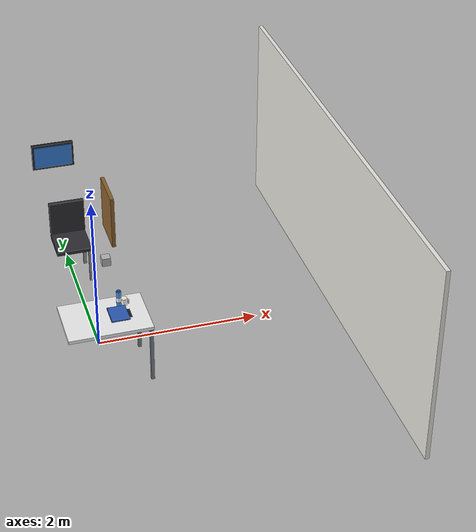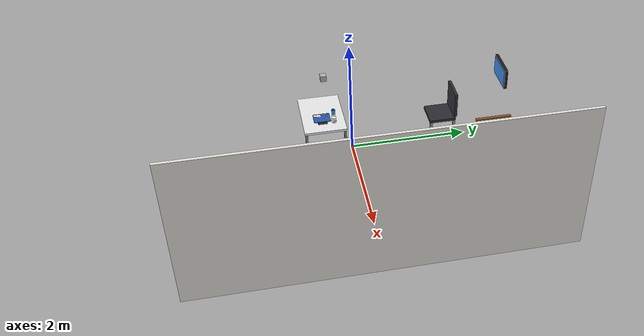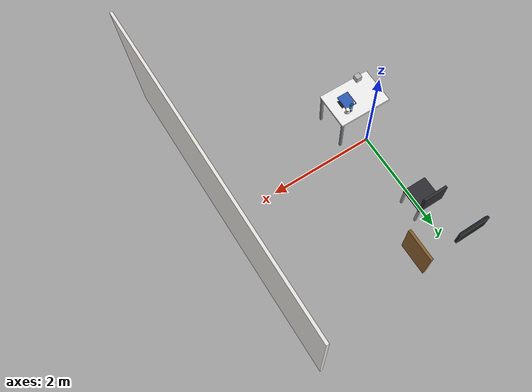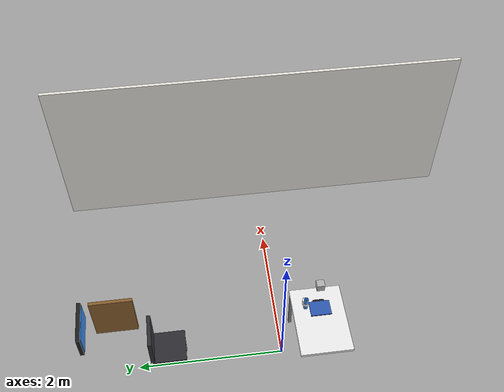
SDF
<sdf version="1.10">
 <world name="bps_room">
  <model name="wall_east">
   <static>true</static>
   <pose>3 0 1.25 0 0 0</pose>
   <link name="link">
    <collision name="collision">
     <geometry><box><size>0.050000000000000003 6 2.5</size></box></geometry>
    </collision>
    <visual name="visual">
     <geometry><box><size>0.050000000000000003 6 2.5</size></box></geometry>
     <material>
      <ambient>0.930000007 0.920000017 0.889999986 1</ambient>
      <diffuse>0.930000007 0.920000017 0.889999986 1</diffuse>
     </material>
    </visual>
    <inertial>
     <mass>1</mass>
     <inertia><ixx>1</ixx><ixy>0</ixy><ixz>0</ixz><iyy>1</iyy><iyz>0</iyz><izz>1</izz></inertia>
    </inertial>
   </link>
  </model>
  <model name="desk_leg_right">
   <static>true</static>
   <pose>0.65000000000000002 2.2999999999999998 0.375 0 0 0</pose>
   <link name="link">
    <collision name="collision">
     <geometry><box><size>0.050000000000000003 0.59999999999999998 0.75</size></box></geometry>
    </collision>
    <visual name="visual">
     <geometry><box><size>0.050000000000000003 0.59999999999999998 0.75</size></box></geometry>
     <material>
      <ambient>0.550000012 0.379999995 0.180000007 1</ambient>
      <diffuse>0.550000012 0.379999995 0.180000007 1</diffuse>
     </material>
    </visual>
    <inertial>
     <mass>1</mass>
     <inertia><ixx>1</ixx><ixy>0</ixy><ixz>0</ixz><iyy>1</iyy><iyz>0</iyz><izz>1</izz></inertia>
    </inertial>
   </link>
  </model>
  <model name="monitor_screen">
   <static>true</static>
   <pose>0 2.6000000000000001 1.2 0 0 0</pose>
   <link name="link">
    <collision name="collision">
     <geometry><box><size>0.55000000000000004 0.050000000000000003 0.34999999999999998</size></box></geometry>
    </collision>
    <visual name="visual">
     <geometry><box><size>0.55000000000000004 0.050000000000000003 0.34999999999999998</size></box></geometry>
     <material>
      <ambient>0.119999997 0.119999997 0.119999997 1</ambient>
      <diffuse>0.119999997 0.119999997 0.119999997 1</diffuse>
     </material>
    </visual>
    <inertial>
     <mass>1</mass>
     <inertia><ixx>1</ixx><ixy>0</ixy><ixz>0</ixz><iyy>1</iyy><iyz>0</iyz><izz>1</izz></inertia>
    </inertial>
   </link>
  </model>
  <model name="monitor_face">
   <static>true</static>
   <pose>0 2.5699999999999998 1.2 0 0 0</pose>
   <link name="link">
    <visual name="visual">
     <geometry><box><size>0.5 0.01 0.29999999999999999</size></box></geometry>
     <material>
      <ambient>0.219999999 0.519999981 0.879999995 1</ambient>
      <diffuse>0.219999999 0.519999981 0.879999995 1</diffuse>
      <emissive>0.100000001 0.25 0.449999988 1</emissive>
     </material>
    </visual>
    <inertial>
     <mass>1</mass>
     <inertia><ixx>1</ixx><ixy>0</ixy><ixz>0</ixz><iyy>1</iyy><iyz>0</iyz><izz>1</izz></inertia>
    </inertial>
   </link>
  </model>
  <model name="chair_seat">
   <static>true</static>
   <pose>0 1.55 0.47999999999999998 0 0 0</pose>
   <link name="link">
    <collision name="collision">
     <geometry><box><size>0.45000000000000001 0.45000000000000001 0.050000000000000003</size></box></geometry>
    </collision>
    <visual name="visual">
     <geometry><box><size>0.45000000000000001 0.45000000000000001 0.050000000000000003</size></box></geometry>
     <material>
      <ambient>0.180000007 0.180000007 0.200000003 1</ambient>
      <diffuse>0.180000007 0.180000007 0.200000003 1</diffuse>
     </material>
    </visual>
    <inertial>
     <mass>1</mass>
     <inertia><ixx>1</ixx><ixy>0</ixy><ixz>0</ixz><iyy>1</iyy><iyz>0</iyz><izz>1</izz></inertia>
    </inertial>
   </link>
  </model>
  <model name="chair_back">
   <static>true</static>
   <pose>0 1.77 0.75 0 0 0</pose>
   <link name="link">
    <collision name="collision">
     <geometry><box><size>0.45000000000000001 0.050000000000000003 0.45000000000000001</size></box></geometry>
    </collision>
    <visual name="visual">
     <geometry><box><size>0.45000000000000001 0.050000000000000003 0.45000000000000001</size></box></geometry>
     <material>
      <ambient>0.180000007 0.180000007 0.200000003 1</ambient>
      <diffuse>0.180000007 0.180000007 0.200000003 1</diffuse>
     </material>
    </visual>
    <inertial>
     <mass>1</mass>
     <inertia><ixx>1</ixx><ixy>0</ixy><ixz>0</ixz><iyy>1</iyy><iyz>0</iyz><izz>1</izz></inertia>
    </inertial>
   </link>
  </model>
  <model name="chair_leg_fr">
   <static>true</static>
   <pose>0.20000000000000001 1.3500000000000001 0.23999999999999999 0 0 0</pose>
   <link name="link">
    <collision name="collision">
     <geometry><box><size>0.040000000000000001 0.040000000000000001 0.47999999999999998</size></box></geometry>
    </collision>
    <visual name="visual">
     <geometry><box><size>0.040000000000000001 0.040000000000000001 0.47999999999999998</size></box></geometry>
     <material>
      <ambient>0.600000024 0.600000024 0.620000005 1</ambient>
      <diffuse>0.600000024 0.600000024 0.620000005 1</diffuse>
     </material>
    </visual>
    <inertial>
     <mass>1</mass>
     <inertia><ixx>1</ixx><ixy>0</ixy><ixz>0</ixz><iyy>1</iyy><iyz>0</iyz><izz>1</izz></inertia>
    </inertial>
   </link>
  </model>
  <model name="chair_leg_br">
   <static>true</static>
   <pose>0.20000000000000001 1.75 0.23999999999999999 0 0 0</pose>
   <link name="link">
    <collision name="collision">
     <geometry><box><size>0.040000000000000001 0.040000000000000001 0.47999999999999998</size></box></geometry>
    </collision>
    <visual name="visual">
     <geometry><box><size>0.040000000000000001 0.040000000000000001 0.47999999999999998</size></box></geometry>
     <material>
      <ambient>0.600000024 0.600000024 0.620000005 1</ambient>
      <diffuse>0.600000024 0.600000024 0.620000005 1</diffuse>
     </material>
    </visual>
    <inertial>
     <mass>1</mass>
     <inertia><ixx>1</ixx><ixy>0</ixy><ixz>0</ixz><iyy>1</iyy><iyz>0</iyz><izz>1</izz></inertia>
    </inertial>
   </link>
  </model>
  <model name="experiment_table">
   <static>true</static>
   <pose>0 -0.5 0.75 0 0 0</pose>
   <link name="link">
    <collision name="collision">
     <geometry><box><size>1 0.69999999999999996 0.040000000000000001</size></box></geometry>
    </collision>
    <visual name="visual">
     <geometry><box><size>1 0.69999999999999996 0.040000000000000001</size></box></geometry>
     <material>
      <ambient>0.959999979 0.959999979 0.959999979 1</ambient>
      <diffuse>0.959999979 0.959999979 0.959999979 1</diffuse>
     </material>
    </visual>
    <inertial>
     <mass>1</mass>
     <inertia><ixx>1</ixx><ixy>0</ixy><ixz>0</ixz><iyy>1</iyy><iyz>0</iyz><izz>1</izz></inertia>
    </inertial>
   </link>
  </model>
  <model name="table_leg_fr">
   <static>true</static>
   <pose>0.46999999999999997 -0.81999999999999995 0.375 0 0 0</pose>
   <link name="link">
    <collision name="collision">
     <geometry><box><size>0.040000000000000001 0.040000000000000001 0.75</size></box></geometry>
    </collision>
    <visual name="visual">
     <geometry><box><size>0.040000000000000001 0.040000000000000001 0.75</size></box></geometry>
     <material>
      <ambient>0.5 0.519999981 0.540000021 1</ambient>
      <diffuse>0.5 0.519999981 0.540000021 1</diffuse>
     </material>
    </visual>
    <inertial>
     <mass>1</mass>
     <inertia><ixx>1</ixx><ixy>0</ixy><ixz>0</ixz><iyy>1</iyy><iyz>0</iyz><izz>1</izz></inertia>
    </inertial>
   </link>
  </model>
  <model name="table_leg_br">
   <static>true</static>
   <pose>0.46999999999999997 -0.17999999999999999 0.375 0 0 0</pose>
   <link name="link">
    <collision name="collision">
     <geometry><box><size>0.040000000000000001 0.040000000000000001 0.75</size></box></geometry>
    </collision>
    <visual name="visual">
     <geometry><box><size>0.040000000000000001 0.040000000000000001 0.75</size></box></geometry>
     <material>
      <ambient>0.5 0.519999981 0.540000021 1</ambient>
      <diffuse>0.5 0.519999981 0.540000021 1</diffuse>
     </material>
    </visual>
    <inertial>
     <mass>1</mass>
     <inertia><ixx>1</ixx><ixy>0</ixy><ixz>0</ixz><iyy>1</iyy><iyz>0</iyz><izz>1</izz></inertia>
    </inertial>
   </link>
  </model>
  <model name="depth_camera">
   <static>true</static>
   <pose>4.163336342344337e-17 -0.5 1.5700000000000001 3.1415926535897931 1.5707926536057681 3.1415926535897931</pose>
   <link name="link">
    <pose>0.050000000000000003 0.050000000000000003 0.050000000000000003 0 0 0</pose>
    <inertial>
     <mass>0.10000000000000001</mass>
     <inertia>
      <ixx>0.00016666700000000001</ixx>
      <iyy>0.00016666700000000001</iyy>
      <izz>0.00016666700000000001</izz>
      <ixy>0</ixy>
      <ixz>0</ixz>
      <iyz>0</iyz>
     </inertia>
    </inertial>
    <collision name="collision">
     <geometry><box><size>0.10000000000000001 0.10000000000000001 0.10000000000000001</size></box></geometry>
    </collision>
    <visual name="visual">
     <geometry><box><size>0.10000000000000001 0.10000000000000001 0.10000000000000001</size></box></geometry>
    </visual>
    <sensor name="depth_camera1" type="depth_camera">
     <topic>depth_camera</topic>
     <update_rate>10</update_rate>
     <enable_metrics>false</enable_metrics>
     <camera name="__default__">
      <horizontal_fov>1.2</horizontal_fov>
      <image>
       <width>640</width>
       <height>480</height>
       <format>R_FLOAT32</format>
       <anti_aliasing>4</anti_aliasing>
      </image>
      <camera_info_topic>__default__</camera_info_topic>
      <triggered>false</triggered>
      <clip><near>0.10000000000000001</near><far>2</far></clip>
      <save enabled="false"><path>__default__</path></save>
      <visibility_mask>4294967295</visibility_mask>
      <noise><type>none</type><mean>0</mean><stddev>0</stddev></noise>
      <distortion><k1>0</k1><k2>0</k2><k3>0</k3><p1>0</p1><p2>0</p2><center>0.5 0.5</center></distortion>
      <lens>
       <type>gnomonical</type>
       <scale_to_hfov>true</scale_to_hfov>
       <cutoff_angle>1.5707963267948966</cutoff_angle>
       <env_texture_size>256</env_texture_size>
      </lens>
     </camera>
    </sensor>
    <sensor name="rgb_camera" type="camera">
     <topic>rgb_camera</topic>
     <update_rate>10</update_rate>
     <enable_metrics>false</enable_metrics>
     <camera name="__default__">
      <horizontal_fov>1.2</horizontal_fov>
      <image><width>640</width><height>480</height><format>RGB_INT8</format><anti_aliasing>4</anti_aliasing></image>
      <camera_info_topic>__default__</camera_info_topic>
      <triggered>false</triggered>
      <clip><near>0.10000000000000001</near><far>2</far></clip>
      <save enabled="false"><path>__default__</path></save>
      <visibility_mask>4294967295</visibility_mask>
      <noise><type>none</type><mean>0</mean><stddev>0</stddev></noise>
      <distortion><k1>0</k1><k2>0</k2><k3>0</k3><p1>0</p1><p2>0</p2><center>0.5 0.5</center></distortion>
      <lens>
       <type>gnomonical</type>
       <scale_to_hfov>true</scale_to_hfov>
       <cutoff_angle>1.5707963267948966</cutoff_angle>
       <env_texture_size>256</env_texture_size>
      </lens>
     </camera>
    </sensor>
    <sensor name="semantic_camera" type="segmentation_camera">
     <topic>semantic_camera</topic>
     <update_rate>10</update_rate>
     <enable_metrics>false</enable_metrics>
     <camera name="__default__">
      <horizontal_fov>1.2</horizontal_fov>
      <image><width>640</width><height>480</height><format>RGB_INT8</format><anti_aliasing>4</anti_aliasing></image>
      <camera_info_topic>__default__</camera_info_topic>
      <triggered>false</triggered>
      <clip><near>0.10000000000000001</near><far>2</far></clip>
      <save enabled="false"><path>__default__</path></save>
      <visibility_mask>4294967295</visibility_mask>
      <noise><type>none</type><mean>0</mean><stddev>0</stddev></noise>
      <distortion><k1>0</k1><k2>0</k2><k3>0</k3><p1>0</p1><p2>0</p2><center>0.5 0.5</center></distortion>
      <lens>
       <type>gnomonical</type>
       <scale_to_hfov>true</scale_to_hfov>
       <cutoff_angle>1.5707963267948966</cutoff_angle>
       <env_texture_size>256</env_texture_size>
      </lens>
     </camera>
    </sensor>
   </link>
  </model>
  <model name="coffee_cup">
   <static>true</static>
   <pose>0.26500000000000001 -0.33000000000000002 0.81599999999999995 0 0 0</pose>
   <link name="link">
    <collision name="collision">
     <geometry>
      <cylinder><radius>0.037999999999999999</radius><length>0.091999999999999998</length></cylinder>
     </geometry>
    </collision>
    <visual name="cup_body">
     <geometry>
      <cylinder><radius>0.037999999999999999</radius><length>0.091999999999999998</length></cylinder>
     </geometry>
     <material>
      <ambient>0.959999979 0.949999988 0.920000017 1</ambient>
      <diffuse>0.959999979 0.949999988 0.920000017 1</diffuse>
      <specular>0.300000012 0.300000012 0.280000001 1</specular>
     </material>
     <plugin name="gz::sim::systems::Label" filename="gz-sim-label-system"><label>2</label></plugin>
    </visual>
    <visual name="rim">
     <pose>0 0 0.043999999999999997 0 0 0</pose>
     <geometry>
      <cylinder><radius>0.037999999999999999</radius><length>0.0040000000000000001</length></cylinder>
     </geometry>
     <material>
      <ambient>0.800000012 0.779999971 0.74000001 1</ambient>
      <diffuse>0.800000012 0.779999971 0.74000001 1</diffuse>
     </material>
     <plugin name="gz::sim::systems::Label" filename="gz-sim-label-system"><label>2</label></plugin>
    </visual>
    <visual name="handle">
     <pose>0.052999999999999999 0 -0.0080000000000000002 0 0 0</pose>
     <geometry><box><size>0.014 0.035999999999999997 0.043999999999999997</size></box></geometry>
     <material>
      <ambient>0.959999979 0.949999988 0.920000017 1</ambient>
      <diffuse>0.959999979 0.949999988 0.920000017 1</diffuse>
     </material>
     <plugin name="gz::sim::systems::Label" filename="gz-sim-label-system"><label>2</label></plugin>
    </visual>
    <visual name="coffee_fill">
     <pose>0 0 0.042000000000000003 0 0 0</pose>
     <geometry>
      <cylinder><radius>0.033000000000000002</radius><length>0.0030000000000000001</length></cylinder>
     </geometry>
     <material>
      <ambient>0.280000001 0.159999996 0.0599999987 1</ambient>
      <diffuse>0.280000001 0.159999996 0.0599999987 1</diffuse>
     </material>
     <plugin name="gz::sim::systems::Label" filename="gz-sim-label-system"><label>2</label></plugin>
    </visual>
    <inertial>
     <mass>1</mass>
     <inertia><ixx>1</ixx><ixy>0</ixy><ixz>0</ixz><iyy>1</iyy><iyz>0</iyz><izz>1</izz></inertia>
    </inertial>
   </link>
  </model>
  <model name="smartphone">
   <static>true</static>
   <pose>0.26551446318626404 -0.51999998092651367 0.77399998903274536 0 0 0</pose>
   <link name="link">
    <collision name="collision">
     <geometry><box><size>0.074999999999999997 0.155 0.0080000000000000002</size></box></geometry>
    </collision>
    <visual name="body">
     <geometry><box><size>0.074999999999999997 0.155 0.0080000000000000002</size></box></geometry>
     <material>
      <ambient>0.119999997 0.119999997 0.140000001 1</ambient>
      <diffuse>0.119999997 0.119999997 0.140000001 1</diffuse>
      <specular>0.349999994 0.349999994 0.379999995 1</specular>
     </material>
     <plugin name="gz::sim::systems::Label" filename="gz-sim-label-system"><label>3</label></plugin>
    </visual>
    <visual name="screen">
     <pose>0 0 0.0025000000000000001 0 0 0</pose>
     <geometry><box><size>0.066000000000000003 0.14000000000000001 0.002</size></box></geometry>
     <material>
      <ambient>0.0599999987 0.0799999982 0.159999996 1</ambient>
      <diffuse>0.0599999987 0.0799999982 0.159999996 1</diffuse>
      <emissive>0.00999999978 0.0199999996 0.0599999987 1</emissive>
     </material>
     <plugin name="gz::sim::systems::Label" filename="gz-sim-label-system"><label>3</label></plugin>
    </visual>
    <visual name="camera_notch">
     <pose>0 0.062 0.0035000000000000001 0 0 0</pose>
     <geometry><cylinder><radius>0.0040000000000000001</radius><length>0.002</length></cylinder></geometry>
     <material>
      <ambient>0.0799999982 0.0799999982 0.100000001 1</ambient>
      <diffuse>0.0799999982 0.0799999982 0.100000001 1</diffuse>
     </material>
     <plugin name="gz::sim::systems::Label" filename="gz-sim-label-system"><label>3</label></plugin>
    </visual>
    <inertial>
     <mass>1</mass>
     <inertia><ixx>1</ixx><ixy>0</ixy><ixz>0</ixz><iyy>1</iyy><iyz>0</iyz><izz>1</izz></inertia>
    </inertial>
   </link>
  </model>
  <model name="notebook">
   <static>true</static>
   <pose>0.1550000011920929 -0.51999998092651367 0.79289203882217407 0 0 0</pose>
   <link name="link">
    <collision name="collision">
     <geometry><box><size>0.22 0.28000000000000003 0.012</size></box></geometry>
    </collision>
    <visual name="cover">
     <geometry><box><size>0.22 0.28000000000000003 0.012</size></box></geometry>
     <material>
      <ambient>0.180000007 0.360000014 0.720000029 1</ambient>
      <diffuse>0.180000007 0.360000014 0.720000029 1</diffuse>
      <specular>0.100000001 0.119999997 0.219999999 1</specular>
     </material>
     <plugin name="gz::sim::systems::Label" filename="gz-sim-label-system"><label>4</label></plugin>
    </visual>
    <visual name="pages">
     <pose>0.0030000000000000001 0 0.0030000000000000001 0 0 0</pose>
     <geometry><box><size>0.20000000000000001 0.26800000000000002 0.0060000000000000001</size></box></geometry>
     <material>
      <ambient>0.970000029 0.959999979 0.899999976 1</ambient>
      <diffuse>0.970000029 0.959999979 0.899999976 1</diffuse>
     </material>
     <plugin name="gz::sim::systems::Label" filename="gz-sim-label-system"><label>4</label></plugin>
    </visual>
    <visual name="spine">
     <pose>-0.108 0 0 0 0 0</pose>
     <geometry><box><size>0.0040000000000000001 0.28000000000000003 0.012999999999999999</size></box></geometry>
     <material>
      <ambient>0.100000001 0.219999999 0.519999981 1</ambient>
      <diffuse>0.100000001 0.219999999 0.519999981 1</diffuse>
     </material>
     <plugin name="gz::sim::systems::Label" filename="gz-sim-label-system"><label>4</label></plugin>
    </visual>
    <inertial>
     <mass>1</mass>
     <inertia><ixx>1</ixx><ixy>0</ixy><ixz>0</ixz><iyy>1</iyy><iyz>0</iyz><izz>1</izz></inertia>
    </inertial>
   </link>
  </model>
  <model name="water_bottle">
   <static>true</static>
   <pose>0.20499999999999999 -0.33000000000000002 0.87 0 0 0</pose>
   <link name="link">
    <collision name="collision">
     <geometry>
      <cylinder><radius>0.029999999999999999</radius><length>0.20000000000000001</length></cylinder>
     </geometry>
    </collision>
    <visual name="bottle_body">
     <geometry>
      <cylinder><radius>0.029999999999999999</radius><length>0.20000000000000001</length></cylinder>
     </geometry>
     <material>
      <ambient>0.25999999 0.560000002 0.879999995 1</ambient>
      <diffuse>0.25999999 0.560000002 0.879999995 1</diffuse>
      <specular>0.400000006 0.560000002 0.720000029 1</specular>
     </material>
     <plugin name="gz::sim::systems::Label" filename="gz-sim-label-system"><label>6</label></plugin>
    </visual>
    <visual name="neck">
     <pose>0 0 0.091999999999999998 0 0 0</pose>
     <geometry><cylinder><radius>0.021999999999999999</radius><length>0.016</length></cylinder></geometry>
     <material>
      <ambient>0.25999999 0.560000002 0.879999995 1</ambient>
      <diffuse>0.25999999 0.560000002 0.879999995 1</diffuse>
     </material>
     <plugin name="gz::sim::systems::Label" filename="gz-sim-label-system"><label>6</label></plugin>
    </visual>
    <visual name="cap">
     <pose>0 0 0.106 0 0 0</pose>
     <geometry><cylinder><radius>0.017999999999999999</radius><length>0.014</length></cylinder></geometry>
     <material>
      <ambient>0.140000001 0.340000004 0.680000007 1</ambient>
      <diffuse>0.140000001 0.340000004 0.680000007 1</diffuse>
     </material>
     <plugin name="gz::sim::systems::Label" filename="gz-sim-label-system"><label>6</label></plugin>
    </visual>
    <visual name="label_band">
     <pose>0 0 -0.01 0 0 0</pose>
     <geometry>
      <cylinder><radius>0.030499999999999999</radius><length>0.059999999999999998</length></cylinder>
     </geometry>
     <material>
      <ambient>0.920000017 0.930000007 0.959999979 1</ambient>
      <diffuse>0.920000017 0.930000007 0.959999979 1</diffuse>
     </material>
     <plugin name="gz::sim::systems::Label" filename="gz-sim-label-system"><label>6</label></plugin>
    </visual>
    <inertial>
     <mass>1</mass>
     <inertia><ixx>1</ixx><ixy>0</ixy><ixz>0</ixz><iyy>1</iyy><iyz>0</iyz><izz>1</izz></inertia>
    </inertial>
   </link>
  </model>
 </world>
</sdf>
